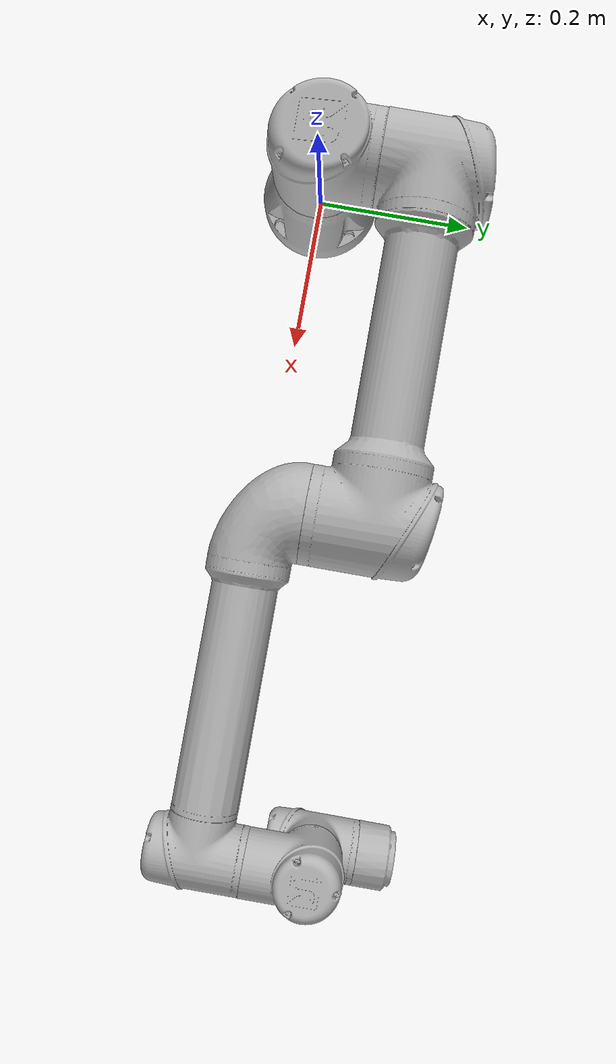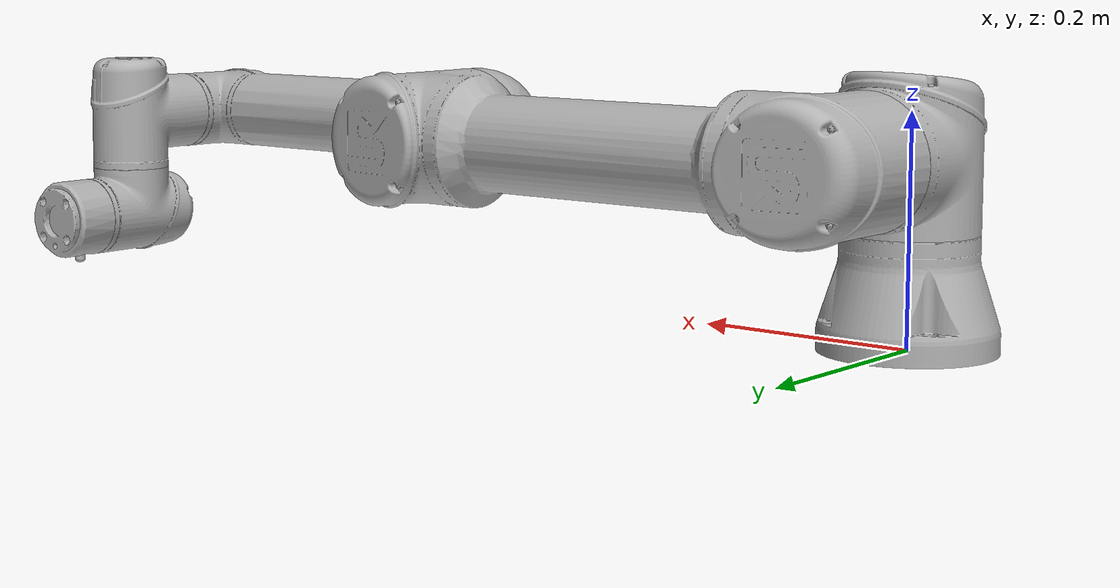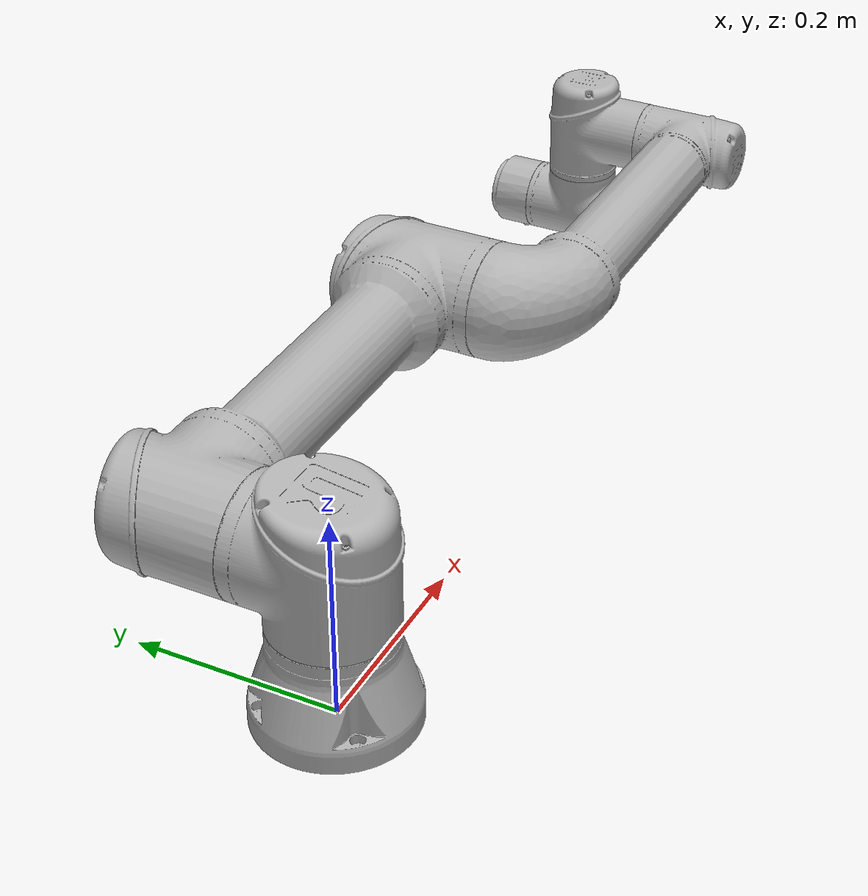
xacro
<?xml version="1.0"?>
<robot xmlns:xacro="http://ros.org/wiki/xacro"
       name="ur5e" >

  <xacro:arg name="transmission_hw_interface" default="hardware_interface/PositionJointInterface"/>

  <!-- common stuff -->
  <xacro:include filename="$(find ur_e_description)/urdf/common.gazebo.xacro" />

  <!-- ur5e -->
  <xacro:include filename="$(find ur_e_description)/urdf/ur5e.urdf.xacro" />

  <!-- arm -->
  <xacro:ur5e_robot prefix="" joint_limited="true"
    shoulder_pan_lower_limit="${-pi}" shoulder_pan_upper_limit="${pi}"
    shoulder_lift_lower_limit="${-pi}" shoulder_lift_upper_limit="${pi}"
    elbow_joint_lower_limit="${-pi}" elbow_joint_upper_limit="${pi}"
    wrist_1_lower_limit="${-pi}" wrist_1_upper_limit="${pi}"
    wrist_2_lower_limit="${-pi}" wrist_2_upper_limit="${pi}"
    wrist_3_lower_limit="${-pi}" wrist_3_upper_limit="${pi}"
    transmission_hw_interface="$(arg transmission_hw_interface)"
  />

  <link name="world" />

  <joint name="world_joint" type="fixed">
    <parent link="world" />
    <child link = "base_link" />
    <origin xyz="0.0 0.0 0.0" rpy="0.0 0.0 0.0" />
  </joint>

</robot>

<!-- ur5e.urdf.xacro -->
<robot xmlns:xacro="http://ros.org/wiki/xacro">

  <xacro:include filename="$(find ur_e_description)/urdf/ur.transmission.xacro" />
  <xacro:include filename="$(find ur_e_description)/urdf/ur.gazebo.xacro" />

  <xacro:macro name="cylinder_inertial" params="radius length mass *origin">
    <inertial>
      <mass value="${mass}" />
      <xacro:insert_block name="origin" />
      <inertia ixx="${0.0833333 * mass * (3 * radius * radius + length * length)}" ixy="0.0" ixz="0.0"
        iyy="${0.0833333 * mass * (3 * radius * radius + length * length)}" iyz="0.0"
        izz="${0.5 * mass * radius * radius}" />
    </inertial>
  </xacro:macro>

  <xacro:macro name="ur5e_robot" params="prefix joint_limited
    shoulder_pan_lower_limit:=${-pi}    shoulder_pan_upper_limit:=${pi}
    shoulder_lift_lower_limit:=${-pi}    shoulder_lift_upper_limit:=${pi}
    elbow_joint_lower_limit:=${-pi}    elbow_joint_upper_limit:=${pi}
    wrist_1_lower_limit:=${-pi}    wrist_1_upper_limit:=${pi}
    wrist_2_lower_limit:=${-pi}    wrist_2_upper_limit:=${pi}
    wrist_3_lower_limit:=${-pi}    wrist_3_upper_limit:=${pi}
    transmission_hw_interface:=hardware_interface/PositionJointInterface
    safety_limits:=false safety_pos_margin:=0.15
    safety_k_position:=20">

    <!-- Inertia parameters -->
    <xacro:property name="base_mass" value="4.0" />  <!-- This mass might be incorrect -->
    <xacro:property name="shoulder_mass" value="3.7000" />
    <xacro:property name="upper_arm_mass" value="8.3930" />
    <xacro:property name="forearm_mass" value="2.2750" />
    <xacro:property name="wrist_1_mass" value="1.2190" />
    <xacro:property name="wrist_2_mass" value="1.2190" />
    <xacro:property name="wrist_3_mass" value="0.1879" />

    <xacro:property name="shoulder_cog" value="0.0 0.00193 -0.02561" />
    <xacro:property name="upper_arm_cog" value="0.0 -0.024201 0.2125" />
    <xacro:property name="forearm_cog" value="0.0 0.0265 0.11993" />
    <xacro:property name="wrist_1_cog" value="0.0 0.110949 0.01634" />
    <xacro:property name="wrist_2_cog" value="0.0 0.0018 0.11099" />
    <xacro:property name="wrist_3_cog" value="0.0 0.001159 0.0" />

    <!-- Kinematic model -->
    <!-- Properties from urcontrol.conf -->
    <xacro:property name="d1" value="0.163" />
    <xacro:property name="a2" value="-0.425" />
    <xacro:property name="a3" value="-0.392" />
    <xacro:property name="d4" value="0.127" />
    <xacro:property name="d5" value="0.100" />
    <xacro:property name="d6" value="0.100" />

    <!-- Arbitrary offsets for shoulder/elbow joints -->
    <xacro:property name="shoulder_offset" value="0.138" />
    <xacro:property name="elbow_offset" value="-0.131" />

    <!-- link lengths used in model -->
    <xacro:property name="shoulder_height" value="${d1}" />
    <xacro:property name="upper_arm_length" value="${-a2}" />
    <xacro:property name="forearm_length" value="${-a3}" />
    <xacro:property name="wrist_1_length" value="${d4}" />
    <xacro:property name="wrist_2_length" value="${d5}" />
    <xacro:property name="wrist_3_length" value="${d6}" />
    <!--property name="shoulder_height" value="0.089159" /-->
    <!--property name="shoulder_offset" value="0.13585" /-->  <!-- shoulder_offset - elbow_offset + wrist_1_length = 0.10915 -->
    <!--property name="upper_arm_length" value="0.42500" /-->
    <!--property name="elbow_offset" value="0.1197" /-->       <!-- CAD measured -->
    <!--property name="forearm_length" value="0.39225" /-->
    <!--property name="wrist_1_length" value="0.093" /-->     <!-- CAD measured -->
    <!--property name="wrist_2_length" value="0.09465" /-->   <!-- In CAD this distance is 0.930, but in the spec it is 0.09465 -->
    <!--property name="wrist_3_length" value="0.0823" /-->

    <xacro:property name="shoulder_radius" value="0.060" />   <!-- manually measured -->
    <xacro:property name="upper_arm_radius" value="0.054" />  <!-- manually measured -->
    <xacro:property name="elbow_radius" value="0.060" />      <!-- manually measured -->
    <xacro:property name="forearm_radius" value="0.040" />    <!-- manually measured -->
    <xacro:property name="wrist_radius" value="0.045" />      <!-- manually measured -->

    <link name="${prefix}base_link" >
      <visual>
        <geometry>
          <mesh filename="package://ur_e_description/meshes/ur5e/visual/base.dae" />
        </geometry>
        <material name="LightGrey">
          <color rgba="0.7 0.7 0.7 1.0"/>
        </material>
      </visual>
      <collision>
        <geometry>
          <mesh filename="package://ur_e_description/meshes/ur5e/collision/base.stl" />
        </geometry>
      </collision>
      <xacro:cylinder_inertial radius="0.06" length="0.05" mass="${base_mass}">
        <origin xyz="0.0 0.0 0.0" rpy="0 0 0" />
      </xacro:cylinder_inertial>
    </link>

    <joint name="${prefix}shoulder_pan_joint" type="revolute">
      <parent link="${prefix}base_link" />
      <child link = "${prefix}shoulder_link" />
      <origin xyz="0.0 0.0 ${shoulder_height}" rpy="0.0 0.0 0.0" />
      <axis xyz="0 0 1" />
      <xacro:unless value="${joint_limited}">
        <limit lower="${-2.0 * pi}" upper="${2.0 * pi}" effort="150.0" velocity="3.14"/>
        <xacro:if value="${safety_limits}">
          <safety_controller soft_lower_limit="${-2.0 * pi + safety_pos_margin}" soft_upper_limit="${2.0 * pi - safety_pos_margin}" k_position="${safety_k_position}" k_velocity="0.0"/>
        </xacro:if>
      </xacro:unless>
      <xacro:if value="${joint_limited}">
        <limit lower="${shoulder_pan_lower_limit}" upper="${shoulder_pan_upper_limit}" effort="150.0" velocity="3.14"/>
        <xacro:if value="${safety_limits}">
          <safety_controller soft_lower_limit="${shoulder_pan_lower_limit + safety_pos_margin}" soft_upper_limit="${shoulder_pan_upper_limit - safety_pos_margin}" k_position="${safety_k_position}" k_velocity="0.0"/>
        </xacro:if>
      </xacro:if>
      <dynamics damping="0.0" friction="0.0"/>
    </joint>

    <link name="${prefix}shoulder_link">
      <visual>
        <geometry>
          <mesh filename="package://ur_e_description/meshes/ur5e/visual/shoulder.dae" />
        </geometry>
        <material name="LightGrey">
          <color rgba="0.7 0.7 0.7 1.0"/>
        </material>
      </visual>
      <collision>
        <geometry>
          <mesh filename="package://ur_e_description/meshes/ur5e/collision/shoulder.stl" />
        </geometry>
      </collision>
      <xacro:cylinder_inertial radius="0.06" length="0.15" mass="${shoulder_mass}">
        <origin xyz="0.0 0.0 0.0" rpy="0 0 0" />
      </xacro:cylinder_inertial>
    </link>

    <joint name="${prefix}shoulder_lift_joint" type="revolute">
      <parent link="${prefix}shoulder_link" />
      <child link = "${prefix}upper_arm_link" />
      <origin xyz="0.0 ${shoulder_offset} 0.0" rpy="0.0 ${pi / 2.0} 0.0" />
      <axis xyz="0 1 0" />
      <xacro:unless value="${joint_limited}">
        <limit lower="${-2.0 * pi}" upper="${2.0 * pi}" effort="150.0" velocity="3.14"/>
        <xacro:if value="${safety_limits}">
          <safety_controller soft_lower_limit="${-2.0 * pi + safety_pos_margin}" soft_upper_limit="${2.0 * pi - safety_pos_margin}" k_position="${safety_k_position}" k_velocity="0.0"/>
        </xacro:if>
      </xacro:unless>
      <xacro:if value="${joint_limited}">
        <limit lower="${shoulder_lift_lower_limit}" upper="${shoulder_lift_upper_limit}" effort="150.0" velocity="3.14"/>
        <xacro:if value="${safety_limits}">
          <safety_controller soft_lower_limit="${shoulder_lift_lower_limit + safety_pos_margin}" soft_upper_limit="${shoulder_lift_upper_limit - safety_pos_margin}" k_position="${safety_k_position}" k_velocity="0.0"/>
        </xacro:if>
      </xacro:if>
      <dynamics damping="0.0" friction="0.0"/>
    </joint>

    <link name="${prefix}upper_arm_link">
      <visual>
        <geometry>
          <mesh filename="package://ur_e_description/meshes/ur5e/visual/upperarm.dae" />
        </geometry>
        <material name="LightGrey">
          <color rgba="0.7 0.7 0.7 1.0"/>
        </material>
      </visual>
      <collision>
        <geometry>
          <mesh filename="package://ur_e_description/meshes/ur5e/collision/upperarm.stl" />
        </geometry>
      </collision>
      <xacro:cylinder_inertial radius="0.06" length="${upper_arm_length}" mass="${upper_arm_mass}">
        <origin xyz="0.0 0.0 ${upper_arm_length/2}" rpy="0 0 0" />
      </xacro:cylinder_inertial>
    </link>

    <joint name="${prefix}elbow_joint" type="revolute">
      <parent link="${prefix}upper_arm_link" />
      <child link = "${prefix}forearm_link" />
      <origin xyz="0.0 ${elbow_offset} ${upper_arm_length}" rpy="0.0 0.0 0.0" />
      <axis xyz="0 1 0" />
      <xacro:unless value="${joint_limited}">
        <limit lower="${-pi}" upper="${pi}" effort="150.0" velocity="3.14"/>
        <xacro:if value="${safety_limits}">
          <safety_controller soft_lower_limit="${-2.0 * pi + safety_pos_margin}" soft_upper_limit="${2.0 * pi - safety_pos_margin}" k_position="${safety_k_position}" k_velocity="0.0"/>
        </xacro:if>
      </xacro:unless>
      <xacro:if value="${joint_limited}">
        <limit lower="${elbow_joint_lower_limit}" upper="${elbow_joint_upper_limit}" effort="150.0" velocity="3.14"/>
        <xacro:if value="${safety_limits}">
          <safety_controller soft_lower_limit="${elbow_joint_lower_limit + safety_pos_margin}" soft_upper_limit="${elbow_joint_upper_limit - safety_pos_margin}" k_position="${safety_k_position}" k_velocity="0.0"/>
        </xacro:if>
      </xacro:if>
      <dynamics damping="0.0" friction="0.0"/>
    </joint>

    <link name="${prefix}forearm_link">
      <visual>
        <geometry>
          <mesh filename="package://ur_e_description/meshes/ur5e/visual/forearm.dae" />
        </geometry>
        <material name="LightGrey">
          <color rgba="0.7 0.7 0.7 1.0"/>
        </material>
      </visual>
      <collision>
        <geometry>
          <mesh filename="package://ur_e_description/meshes/ur5e/collision/forearm.stl" />
        </geometry>
      </collision>
      <xacro:cylinder_inertial radius="0.06" length="${forearm_length}" mass="${forearm_mass}">
        <origin xyz="0.0 0.0 ${forearm_length/2}" rpy="0 0 0" />
      </xacro:cylinder_inertial>
    </link>

    <joint name="${prefix}wrist_1_joint" type="revolute">
      <parent link="${prefix}forearm_link" />
      <child link = "${prefix}wrist_1_link" />
      <origin xyz="0.0 0.0 ${forearm_length}" rpy="0.0 ${pi / 2.0} 0.0" />
      <axis xyz="0 1 0" />
      <xacro:unless value="${joint_limited}">
        <limit lower="${-2.0 * pi}" upper="${2.0 * pi}" effort="28.0" velocity="6.28"/>
        <xacro:if value="${safety_limits}">
          <safety_controller soft_lower_limit="${-2.0 * pi + safety_pos_margin}" soft_upper_limit="${2.0 * pi - safety_pos_margin}" k_position="${safety_k_position}" k_velocity="0.0"/>
        </xacro:if>
      </xacro:unless>
      <xacro:if value="${joint_limited}">
        <limit lower="${wrist_1_lower_limit}" upper="${wrist_1_upper_limit}" effort="28.0" velocity="6.28"/>
        <xacro:if value="${safety_limits}">
          <safety_controller soft_lower_limit="${wrist_1_lower_limit + safety_pos_margin}" soft_upper_limit="${wrist_1_upper_limit - safety_pos_margin}" k_position="${safety_k_position}" k_velocity="0.0"/>
        </xacro:if>
      </xacro:if>
      <dynamics damping="0.0" friction="0.0"/>
    </joint>

    <link name="${prefix}wrist_1_link">
      <visual>
        <geometry>
          <mesh filename="package://ur_e_description/meshes/ur5e/visual/wrist1.dae" />
        </geometry>
        <material name="LightGrey">
          <color rgba="0.7 0.7 0.7 1.0"/>
        </material>
      </visual>
      <collision>
        <geometry>
          <mesh filename="package://ur_e_description/meshes/ur5e/collision/wrist1.stl" />
        </geometry>
      </collision>
      <xacro:cylinder_inertial radius="0.06" length="0.12" mass="${wrist_1_mass}">
        <origin xyz="0.0 ${wrist_1_length} 0.0" rpy="0 0 0" />
      </xacro:cylinder_inertial>
    </link>

    <joint name="${prefix}wrist_2_joint" type="revolute">
      <parent link="${prefix}wrist_1_link" />
      <child link = "${prefix}wrist_2_link" />
      <origin xyz="0.0 ${wrist_1_length} 0.0" rpy="0.0 0.0 0.0" />
      <axis xyz="0 0 1" />
      <xacro:unless value="${joint_limited}">
        <limit lower="${-2.0 * pi}" upper="${2.0 * pi}" effort="28.0" velocity="6.28"/>
        <xacro:if value="${safety_limits}">
          <safety_controller soft_lower_limit="${-2.0 * pi + safety_pos_margin}" soft_upper_limit="${2.0 * pi - safety_pos_margin}" k_position="${safety_k_position}" k_velocity="0.0"/>
        </xacro:if>
      </xacro:unless>
      <xacro:if value="${joint_limited}">
        <limit lower="${wrist_2_lower_limit}" upper="${wrist_2_upper_limit}" effort="28.0" velocity="6.28"/>
        <xacro:if value="${safety_limits}">
          <safety_controller soft_lower_limit="${wrist_2_lower_limit + safety_pos_margin}" soft_upper_limit="${wrist_2_upper_limit - safety_pos_margin}" k_position="${safety_k_position}" k_velocity="0.0"/>
        </xacro:if>
      </xacro:if>
      <dynamics damping="0.0" friction="0.0"/>
    </joint>

    <link name="${prefix}wrist_2_link">
      <visual>
        <geometry>
          <mesh filename="package://ur_e_description/meshes/ur5e/visual/wrist2.dae" />
        </geometry>
        <material name="LightGrey">
          <color rgba="0.7 0.7 0.7 1.0"/>
        </material>
      </visual>
      <collision>
        <geometry>
          <mesh filename="package://ur_e_description/meshes/ur5e/collision/wrist2.stl" />
        </geometry>
      </collision>
      <xacro:cylinder_inertial radius="0.06" length="0.12" mass="${wrist_2_mass}">
        <origin xyz="0.0 0.0 ${wrist_2_length}" rpy="0 0 0" />
      </xacro:cylinder_inertial>
    </link>

    <joint name="${prefix}wrist_3_joint" type="revolute">
      <parent link="${prefix}wrist_2_link" />
      <child link = "${prefix}wrist_3_link" />
      <origin xyz="0.0 0.0 ${wrist_2_length}" rpy="0.0 0.0 0.0" />
      <axis xyz="0 1 0" />
      <xacro:unless value="${joint_limited}">
        <limit lower="${-2.0 * pi}" upper="${2.0 * pi}" effort="28.0" velocity="6.28"/>
        <xacro:if value="${safety_limits}">
          <safety_controller soft_lower_limit="${-2.0 * pi + safety_pos_margin}" soft_upper_limit="${2.0 * pi - safety_pos_margin}" k_position="${safety_k_position}" k_velocity="0.0"/>
        </xacro:if>
      </xacro:unless>
      <xacro:if value="${joint_limited}">
        <limit lower="${wrist_3_lower_limit}" upper="${wrist_3_upper_limit}" effort="28.0" velocity="6.28"/>
        <xacro:if value="${safety_limits}">
          <safety_controller soft_lower_limit="${wrist_3_lower_limit + safety_pos_margin}" soft_upper_limit="${wrist_3_upper_limit - safety_pos_margin}" k_position="${safety_k_position}" k_velocity="0.0"/>
        </xacro:if>
      </xacro:if>
      <dynamics damping="0.0" friction="0.0"/>
    </joint>

    <link name="${prefix}wrist_3_link">
      <visual>
        <geometry>
          <mesh filename="package://ur_e_description/meshes/ur5e/visual/wrist3.dae" />
        </geometry>
        <material name="LightGrey">
          <color rgba="0.7 0.7 0.7 1.0"/>
        </material>
      </visual>
      <collision>
        <geometry>
          <mesh filename="package://ur_e_description/meshes/ur5e/collision/wrist3.stl" />
        </geometry>
      </collision>
      <xacro:cylinder_inertial radius="0.0375" length="0.0458" mass="${wrist_3_mass}">
        <origin xyz="0.0 ${wrist_3_length - 0.0458/2} 0.0" rpy="${pi/2} 0 0" />
      </xacro:cylinder_inertial>
    </link>

    <joint name="${prefix}ee_fixed_joint" type="fixed">
      <parent link="${prefix}wrist_3_link" />
      <child link = "${prefix}ee_link" />
      <origin xyz="0.0 ${wrist_3_length} 0.0" rpy="0.0 0.0 ${pi/2.0}" />
    </joint>

    <link name="${prefix}ee_link">
      <collision>
        <geometry>
          <box size="0.01 0.01 0.01"/>
        </geometry>
        <origin rpy="0 0 0" xyz="-0.01 0 0"/>
      </collision>
    </link>

    <xacro:ur_arm_transmission prefix="${prefix}" />
    <xacro:ur_arm_gazebo prefix="${prefix}" />

    <!-- ROS base_link to UR 'Base' Coordinates transform -->
    <link name="${prefix}base"/>
    <joint name="${prefix}base_link-base_fixed_joint" type="fixed">
      <!-- NOTE: this rotation is only needed as long as base_link itself is
                 not corrected wrt the real robot (ie: rotated over 180
                 degrees)
      -->
      <origin xyz="0 0 0" rpy="0 0 ${-pi}"/>
      <parent link="${prefix}base_link"/>
      <child link="${prefix}base"/>
    </joint>

    <!-- Frame coincident with all-zeros TCP on UR controller -->
    <link name="${prefix}tool0"/>
    <joint name="${prefix}wrist_3_link-tool0_fixed_joint" type="fixed">
      <origin xyz="0 ${wrist_3_length} 0" rpy="${pi/-2.0} 0 0"/>
      <parent link="${prefix}wrist_3_link"/>
      <child link="${prefix}tool0"/>
    </joint>

  </xacro:macro>
</robot>
